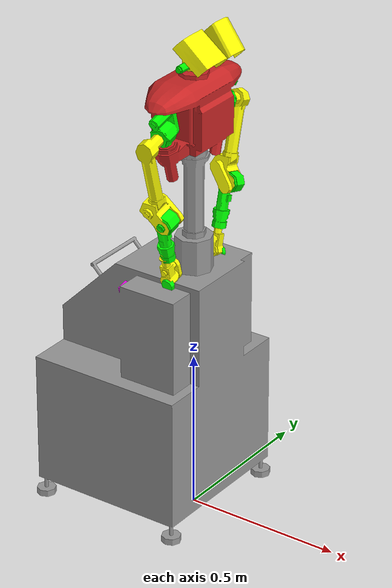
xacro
<?xml version="1.0"?>
<robot xmlns:xacro="http://www.ros.org/wiki/xacro" name="hiro">
  <include filename="$(find hiro_common)/urdf/common.xacro" />
  <include filename="$(find hiro_common)/urdf/materials.urdf.xacro" />

  <include filename="$(find hiro_common)/urdf/hiro_arm.urdf.xacro" />
  <include filename="$(find hiro_common)/urdf/hiro_base.urdf.xacro" />
  <include filename="$(find hiro_common)/urdf/hiro_chest.urdf.xacro" />
  <include filename="$(find hiro_common)/urdf/hiro_head.urdf.xacro" />
  <include filename="$(find hiro_common)/urdf/hiro_hand.urdf.xacro" />

	<xacro:base />
	<xacro:chest />
	<xacro:head />

  <xacro:arm side="r" reflect="1" reflect2="0" />
  <xacro:hand side="r" reflect="1" reflect2="0" />

  <xacro:arm side="l" reflect="-1" reflect2="1" />
  <xacro:hand side="l" reflect="-1" reflect2="1" />
</robot>

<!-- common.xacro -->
<robot>
  <property name="M_PI" value="3.1415926535897931" />

  <property name="pi" value="3.1415926535897931" />
  <property name="rad_per_deg" value="0.0174532925" />
</robot>

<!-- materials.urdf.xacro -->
<robot>

  <material name="Blue">
    <color rgba="0.0 0.0 0.8 1.0"/>
  </material>

  <material name="Green">
    <color rgba="0.0 0.8 0.0 1.0"/>
  </material>

  <material name="Grey">
    <color rgba="0.7 0.7 0.7 1.0"/>
  </material>

  <material name="Grey2">
    <color rgba="0.9 0.9 0.9 1.0"/>
  </material>

  <material name="Red">
    <color rgba="0.8 0.0 0.0 1.0"/>
  </material>

  <material name="White">
    <color rgba="1.0 1.0 1.0 1.0"/>
  </material>

  <material name="Black">
    <color rgba="0.1 0.1 0.1 1.0"/>
  </material>

  <material name="LightGrey">
    <color rgba="0.6 0.6 0.6 1.0"/>
  </material>

  <material name="white">
	  <color rgba="1 1 1 1"/>
	</material>
	<material name="yellow">
  	<color rgba="1 1 0 1"/>
  </material>
  <material name="magenta">
	  <color rgba="1 0 1 1"/>
  </material>
  <material name="red">
  	<color rgba="1 0 0 1"/>
  </material>
 	<material name="cyan">
	  <color rgba="0 1 1 1"/>
	</material>
	<material name="green">
	  <color rgba="0 1 0 1"/>
	</material>
	<material name="blue">
	  <color rgba="0 0 1 1"/>
	</material>
	<material name="black">
	  <color rgba="0 0 0 1"/>
	</material>
	<material name="violet">
	  <color rgba="0.6 0 1 1"/>
	</material>
	<material name="orange">
	  <color rgba="1 0.6 0 1"/>
	</material>
	<material name="grey">
	  <color rgba="0.6 0.6 0.6 1"/>
	</material>
	<material name="spring_green">
    <color rgba="0 1 0.498 1"/>
  </material>
  <material name="chartreuse">
    <color rgba="0.498 1 0 1"/>
  </material>
  <material name="olive_drab">
    <color rgba="0.753 1 0.243 1"/>
  </material>

  <material name="chest_red">
    <texture filename="package://hiro_common/materials/textures/chest_texture.png" />
  </material>

  <material name="chest_red_2">
    <texture filename="package://hiro_common/materials/textures/chest_texture_2.png" />
  </material>

  <material name="chest_red_3">
    <texture filename="package://hiro_common/materials/textures/chest_texture_4.jpg" />
  </material>
</robot>

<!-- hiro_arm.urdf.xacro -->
<robot xmlns:xacro="http://www.ros.org/wiki/xacro" name="hiro_arm">
  <!-- TODO Find out the exact value for below-->
  <xacro:property name="dist_to_wrist_pitch_mesh_boundary" value="-0.025" />

  <xacro:macro name="arm" params="side reflect reflect2">
  	<joint name="joint_${side}shoulder_yaw" type="revolute">
      <parent link="link_chest_yaw"/>
      <child link="link_${side}shoulder_yaw"/>
      <origin xyz="0.000 ${-0.145*reflect} 0.380" rpy="${0.261799*reflect} 0 0"/> <!-- rotation   1 0 0  0.261799 -->
      <axis xyz="0 0 1"/>
      <limit lower="${-90*rad_per_deg}" upper="${90*rad_per_deg}" effort="1000.0" velocity="0.5"/>
      <!--safety_controller  soft_lower_limit="${-85*rad_per_deg}" soft_upper_limit="${85*rad_per_deg}" k_position="0" k_velocity="0" /-->
      <!-- rotorInertia	1.12e-01 -->
      <dynamics damping="0.0" friction="0.0"/>
    </joint>

    <link name="link_${side}shoulder_yaw">
    <inertial>
      <origin xyz="-0.00226388 ${0.00521383*reflect} 0.01560807"/>
      <mass value="1.32626000" />
      <!-- momentsOfInertia [0.00207537 -0.00011276 0.00008927; -0.00011276 0.00240295 0.00004570; 0.00008927 0.00004570 0.00141912] -->
      <inertia  ixx="0.00207537" ixy="${-0.00011276*reflect}"  ixz="0.00008927"  iyy="0.00240295"  iyz="${0.00004570*reflect}"  izz="0.00141912" />
    </inertial>
      <visual>
        <geometry>
          <mesh filename="package://hiro_common/meshes/${side}sy.stl"/>
        </geometry>
        <origin xyz="0 0 0" rpy="0 0 0"/>
        <material name="green"/>
      </visual>
      <collision>
        <geometry>
          <mesh filename="package://hiro_common/meshes/${side}sy.stl"/>
        </geometry>
        <origin xyz="0 0 0" rpy="0 0 0"/>
      </collision>
    </link>
    <gazebo reference="link_${side}shoulder_yaw">
      <material>Gazebo/Red</material>
      <turnGravityOff>true</turnGravityOff>
    </gazebo>

   	<joint name="joint_${side}shoulder_pitch" type="revolute">
      <parent link="link_${side}shoulder_yaw"/>
      <child link="link_${side}shoulder_pitch"/>
      <origin xyz="0 0 0" rpy="0 0 0"/>
      <axis xyz="0 1 0"/>
      <limit lower="${-180*rad_per_deg}" upper="${120*rad_per_deg}" effort="1000.0" velocity="0.5"/>
      <!--safety_controller  soft_lower_limit="${-175*rad_per_deg}" soft_upper_limit="${115*rad_per_deg}" k_position="0" k_velocity="0" /-->
      <!-- rotorInertia	1.68e-01 -->
      <dynamics damping="0.0" friction="0.0"/>
    </joint>

   	<link name="link_${side}shoulder_pitch">
    <inertial>
      <origin xyz="-0.00005236 ${-0.05831338*reflect} -0.10706059"/>
      <mass value="1.14898000" />
      <!-- momentsOfInertia [0.01541678 -0.00000097 0.00000352; -0.00000098 0.01471175 -0.00213705; 0.00000351 -0.00213704 0.00126575] -->
      <inertia  ixx="0.01541678" ixy="${-0.00000097*reflect}"  ixz="0.00000352"  iyy="0.01471175"  iyz="${-0.00213705*reflect}"  izz="0.00126575" />
    </inertial>
      <visual>
        <geometry>
          <mesh filename="package://hiro_common/meshes/${side}sp.stl"/>
        </geometry>
        <origin xyz="0 0 0" rpy="0 0 0"/>
        <material name="yellow"/>
      </visual>
      <collision>
        <geometry>
          <mesh filename="package://hiro_common/meshes/${side}sp.stl"/>
        </geometry>
        <origin xyz="0 0 0" rpy="0 0 0"/>
      </collision>
    </link>
    <gazebo reference="link_${side}shoulder_pitch">
      <material>Gazebo/Yellow</material>
      <turnGravityOff>true</turnGravityOff>
    </gazebo>

    <joint name="joint_${side}elbow_pitch" type="revolute">
      <parent link="link_${side}shoulder_pitch"/>
      <child link="link_${side}elbow_pitch"/>
      <origin xyz="0.020 ${-0.085*reflect} -0.250" rpy="0 0 0"/>
      <axis xyz="0 1 0"/>
      <limit lower="${-160*rad_per_deg}" upper="${10*rad_per_deg}" effort="1000.0" velocity="0.5"/>
      <!--safety_controller  soft_lower_limit="${-155*rad_per_deg}" soft_upper_limit="${0*rad_per_deg}" k_position="0" k_velocity="0" /-->
      <!-- rotorInertia	6.00e-02 -->
      <dynamics damping="0.0" friction="0.0"/>
    </joint>

   	<link name="link_${side}elbow_pitch">
      <inertial>
        <origin xyz="-0.00002254 ${-0.00167107*reflect} -0.07151163"/>
        <mass value="0.57751838" />
        <!-- momentsOfInertia [0.00143966 0.00000030 0.00000120; 0.00000030 0.00141763 0.00007596; 0.00000120 0.00007596 0.00019720] -->
        <inertia  ixx="0.00143966" ixy="${0.00000030*reflect}"  ixz="0.00000120"  iyy="0.00141763"  iyz="${0.00007596*reflect}"  izz="0.00019720" />
      </inertial>
      <visual>
        <geometry>
          <mesh filename="package://hiro_common/meshes/${side}ep.stl"/>
        </geometry>
        <origin xyz="0 0 0" rpy="0 0 0"/>
        <material name="green"/>
      </visual>
      <collision>
        <geometry>
          <mesh filename="package://hiro_common/meshes/${side}ep.stl"/>
          <turnGravityOff>true</turnGravityOff>
        </geometry>
        <origin xyz="0 0 0" rpy="0 0 0"/>
      </collision>
    </link>
    <gazebo reference="link_${side}elbow_pitch">
      <material>Gazebo/Yellow</material>
    </gazebo>

    <joint name="joint_${side}wrist_yaw" type="revolute">
      <parent link="link_${side}elbow_pitch"/>
      <child link="link_${side}wrist_yaw"/>
      <origin xyz="-0.02 0.0 -0.22" rpy="0 0 0"/>
      <axis xyz="0 0 1"/>
      <limit lower="${(-195+reflect2*60)*rad_per_deg}" upper="${(135+reflect2*60)*rad_per_deg}" effort="1000.0" velocity="0.5"/>
      <!--safety_controller  soft_lower_limit="${-190*rad_per_deg}" soft_upper_limit="${130*rad_per_deg}" k_position="0" k_velocity="0" /-->
      <!-- rotorInertia	3.74e-03 -->
      <dynamics damping="0.0" friction="0.0"/>
    </joint>

   	<link name="link_${side}wrist_yaw">
      <inertial>
        <origin xyz="-0.00001788 ${0.00395812*reflect} -0.20273050"/>
        <mass value="0.45741788" />
        <!-- momentsOfInertia [0.00069205 -0.00000003 0.00000052; -0.00000003 0.00068903 0.00001915; 0.00000052 0.00001915 0.00013509] -->
        <inertia  ixx="0.00069205" ixy="${-0.00000003*reflect}"  ixz="0.00000052"  iyy="0.00068903"  iyz="${0.00001915*reflect}"  izz="0.00013509" />
      </inertial>
      <visual>
        <geometry>
          <mesh filename="package://hiro_common/meshes/${side}wy.stl"/>
        </geometry>
        <origin xyz="0 0 0" rpy="0 0 0"/>
        <material name="yellow"/>
      </visual>
      <collision>
        <geometry>
          <mesh filename="package://hiro_common/meshes/${side}wy.stl"/>
        </geometry>
        <origin xyz="0 0 0" rpy="0 0 0"/>
      </collision>
    </link>
    <gazebo reference="link_${side}wrist_yaw">
      <material>Gazebo/Yellow</material>
      <turnGravityOff>false</turnGravityOff>
    </gazebo>

    <joint name="joint_${side}wrist_pitch" type="revolute">
      <parent link="link_${side}wrist_yaw"/>
      <child link="link_${side}wrist_pitch"/>
      <origin xyz="0 0 0" rpy="0 0 0"/>
      <axis xyz="0 1 0"/>
      <limit lower="${-100*rad_per_deg}" upper="${100*rad_per_deg}" effort="1000.0" velocity="0.5"/>
      <!--safety_controller  soft_lower_limit="${-95*rad_per_deg}" soft_upper_limit="${95*rad_per_deg}" k_position="0" k_velocity="0" /-->
      <!-- rotorInertia	1.50e-02 -->
      <dynamics damping="0.0" friction="0.0"/>
    </joint>

    <link name="link_${side}wrist_pitch">
      <inertial>
        <origin xyz="0.00243131 ${-0.00379733*reflect} -0.05770359"/>
        <mass value="0.41843443" />
        <!-- momentsOfInertia [0.00052016 -0.00000169 0.00000790; -0.00000169 0.00050569 0.00005377; 0.00000790 0.00005377 0.00014004] -->
        <inertia  ixx="0.00052016" ixy="${-0.00000169*reflect}"  ixz="0.00000790"  iyy="0.00050569"  iyz="${0.00005377*reflect}"  izz="0.00014004" />
      </inertial>
      <visual>
        <geometry>
          <mesh filename="package://hiro_common/meshes/${side}wp.stl"/>
        </geometry>
        <origin xyz="0 0 0" rpy="0 0 0"/>
        <material name="green"/>
      </visual>
      <collision>
        <geometry>
          <mesh filename="package://hiro_common/meshes/${side}wp.stl"/>
        </geometry>
        <origin xyz="0 0 0" rpy="0 0 0"/>
      </collision>
    </link>
    <gazebo reference="link_${side}wrist_pitch">
      <material>Gazebo/Yellow</material>
      <turnGravityOff>true</turnGravityOff>
    </gazebo>

    <joint name="joint_${side}wrist_roll" type="revolute">
      <parent link="link_${side}wrist_pitch"/>
      <child link="link_${side}wrist_roll"/>
      <!--origin xyz="0.0  0.0 -0.090" rpy="0 0 0"/-->
      <origin xyz="${dist_to_wrist_pitch_mesh_boundary}  0.0 -0.090" rpy="0 0 0"/>
      <axis xyz="1 0 0"/>
      <limit lower="${-130*rad_per_deg}" upper="${130*rad_per_deg}" effort="1000.0" velocity="0.5"/>
      <!--safety_controller  soft_lower_limit="${-125*rad_per_deg}" soft_upper_limit="${125*rad_per_deg}" k_position="0" k_velocity="0" /-->
      <!-- rotorInertia	7.56e-03 -->
      <dynamics damping="0.0" friction="0.0"/>
    </joint>

    <link name="link_${side}wrist_roll">
      <inertial>
        <origin xyz="-0.04847597 ${0.00000320*reflect} -0.03889875"/>
        <mass value="1.05156000" />
        <!-- momentsOfInertia [0.00194072 -0.00000011 -0.00042482; -0.00000011 0.00209392 -0.00000012; -0.00042482 -0.00000012 0.00035788] -->
        <inertia  ixx="0.00194072" ixy="${-0.00000011*reflect}"  ixz="-0.00042482"  iyy="0.00209392"  iyz="${-0.00000012*reflect}"  izz="0.00035788" />
      </inertial>
      <visual>
        <geometry>
          <!--mesh filename="package://hiro_common/meshes/wr.stl"/-->
          <box size="0.010 0.055 0.070"/>
        </geometry>
        <origin xyz="0 0 0" rpy="0 0 0"/>
        <material name="yellow"/>
      </visual>
      <collision>
        <geometry>
          <!--mesh filename="package://hiro_common/meshes/wr.stl"/-->
          <box size="0.010 0.055 0.070"/>
        </geometry>
        <origin xyz="0 0 0" rpy="0 0 0"/>
      </collision>
    </link>
    <gazebo reference="link_${side}wrist_roll">
      <material>Gazebo/Yellow</material>
      <turnGravityOff>false</turnGravityOff>
    </gazebo>
  </xacro:macro>
</robot>

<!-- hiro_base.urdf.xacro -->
<robot xmlns:xacro="http://www.ros.org/wiki/xacro" name="hiro_base">
  <xacro:property name="base_height" value="0.900" />
  <xacro:property name="torso_height" value="0.300" />

  <xacro:macro name="base">
    <link name="link_base">
      <inertial>
        <origin xyz="-0.00038809 0.00000166 ${base_height+0.16466017}"/>
        <mass value="93.11081000" />
<!--        momentsOfInertia [0.03473180 0.00000578 -0.00003341; 0.00000578 0.03474816 0.00000063; -0.00003343 0.00000062 0.00438238] -->
        <inertia  ixx="0.03473180" ixy="0.00000578"  ixz="-0.00003341"  iyy="0.03474816"  iyz="0.00000063"  izz="0.00438238" />
      </inertial>
      <visual>
        <geometry>
          <mesh filename="package://hiro_common/meshes/base.stl"/>
          <!--cylinder length="${base_height+torso_height}" radius="0.030"/-->
        </geometry>
        <origin xyz="0 0 ${base_height}" rpy="0 ${-0.5*pi} ${-0.5*pi}"/>
        <!--origin xyz="0 0 ${(base_height+torso_height)/2}" rpy="0 0 0"/-->
        <material name="grey"/>
      </visual>
      <collision>
        <geometry>
          <!--mesh filename="package://hiro_common/meshes/base.stl"/-->
          <!--cylinder length="${base_height+torso_height}" radius="0.030"/-->
          <cylinder length="${torso_height}" radius="0.030"/>
        </geometry>
        <!--origin xyz="0 0 ${base_height}" rpy="0 ${-0.5*pi} ${-0.5*pi}"/-->
        <!--origin xyz="0 0 ${(base_height+torso_height)/2}" rpy="0 0 0"/-->
        <origin xyz="0 0 ${base_height+(torso_height/2)}" rpy="0 0 0"/> <!--This is safer because this collision model is above the table (not in collision)-->
      </collision>
    </link>
    <gazebo reference="link_base">
      <material>Gazebo/Red</material>
      <mu1 value="100.0" />
      <mu2 value="100.0" />
      <kp  value="1000000.0" />
      <kd  value="1.0" />
      <turnGravityOff>true</turnGravityOff>
    </gazebo>
  </xacro:macro>
</robot>

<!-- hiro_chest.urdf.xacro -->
<robot xmlns:xacro="http://www.ros.org/wiki/xacro" name="hiro_chest">
  <xacro:macro name="chest">
    <joint name="joint_chest_yaw" type="revolute">
      <parent link="link_base"/>
      <child link="link_chest_yaw"/>
      <origin xyz="0 0 ${base_height}" rpy="0 0 0"/>
      <axis xyz="0 0 1"/>
      <limit lower="${-170*rad_per_deg}" upper="${170*rad_per_deg}" effort="1000.0" velocity="0.5"/>
      <!--safety_controller  soft_lower_limit="${-170*rad_per_deg}" soft_upper_limit="${170*rad_per_deg}" k_position="0" k_velocity="0" /-->
      <!-- rotorInertia	1.12e-01 -->
      <dynamics damping="0.0" friction="0.0"/>
    </joint>

    <link name="link_chest_yaw">
      <inertial>
        <origin xyz="-0.00493378 -0.00097682 0.34405202"/>
        <mass value="6.20761000" />
        <!-- momentsOfInertia [0.06395752 -0.00022833 0.00011172; -0.00022833 0.03108451 0.00006480; 0.00011172 0.00006480 0.05011067] -->
        <inertia  ixx="0.06395752" ixy="-0.00022833"  ixz="0.00011172"  iyy="0.03108451"  iyz="0.00006480"  izz="0.05011067" />
      </inertial>
      <visual>
        <geometry>
          <mesh filename="package://hiro_common/meshes/cy.stl"/>
        </geometry>
        <origin xyz="0 0 0"/>
        <!--material name="magenta"/-->
        <material name="chest_red_3"/>
      </visual>
      <collision>
        <geometry>
          <mesh filename="package://hiro_common/meshes/cy.stl"/>
        </geometry>
        <origin xyz="0 0 0"/>
      </collision>
    </link>
    <gazebo reference="link_chest_yaw">
      <material>Gazebo/Red</material>
      <turnGravityOff>true</turnGravityOff>
    </gazebo>
  </xacro:macro>
</robot>

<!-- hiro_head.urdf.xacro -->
<robot xmlns:xacro="http://www.ros.org/wiki/xacro" name="hiro_head">
  <xacro:macro name="head">
    <joint name="joint_head_yaw" type="revolute">
      <parent link="link_chest_yaw"/>
      <child link="link_neck_yaw"/>
      <origin xyz="0.0 0 0.5495" rpy="0 0 0"/> <!-- rotation 0 0 1 0 -->
      <axis xyz="0 0 1"/>
      <limit lower="${-165*rad_per_deg}" upper="${165*rad_per_deg}" effort="1000.0" velocity="0.5"/>
      <safety_controller  soft_lower_limit="${-160*rad_per_deg}" soft_upper_limit="${160*rad_per_deg}" k_position="0" k_velocity="0" />
      <dynamics damping="0.0" friction="0.0"/>
    </joint>

    <link name="link_neck_yaw">
      <inertial>
        <origin xyz="-0.00002292 0.00547848 -0.00784016"/>
        <mass value="0.31792900" />
        <!-- momentsOfInertia [0.00027682 0.00000003 -0.00000033; 0.00000003 0.00013009 -0.00001092; -0.00000033 -0.00001092 0.00020954] -->
        <inertia  ixx="0.00027682" ixy="0.00000003"  ixz="-0.00000033"  iyy="0.00013009"  iyz="-0.00001092"  izz="0.00020954" />
      </inertial>
      <visual>
        <geometry>
          <mesh filename="package://hiro_common/meshes/ny.stl"/>
        </geometry>
        <origin xyz="0 0 0" rpy="0 0 0"/>
        <material name="green"/>
      </visual>
      <collision>
        <geometry>
          <mesh filename="package://hiro_common/meshes/ny.stl"/>
        </geometry>
        <origin xyz="0 0 0" rpy="0 0 0"/>
      </collision>
    </link>
    <gazebo reference="link_neck_yaw">
      <material>Gazebo/Red</material>
      <turnGravityOff>true</turnGravityOff>
    </gazebo>

    <joint name="joint_head_pitch" type="revolute">
      <parent link="link_neck_yaw"/>
      <child link="link_neck_pitch"/>
      <origin xyz="0 0 0" rpy="0 0 0"/> <!-- rotation 0 1 0 0 -->
      <axis xyz="0 1 0"/>
      <limit lower="${-50*rad_per_deg}" upper="${50*rad_per_deg}" effort="1000.0" velocity="0.5"/>
      <safety_controller  soft_lower_limit="${-45*rad_per_deg}" soft_upper_limit="${45*rad_per_deg}" k_position="0" k_velocity="0" />
      <dynamics damping="0.0" friction="0.0"/>
    </joint>

    <link name="link_neck_pitch">
      <inertial>
        <origin xyz="0.00000502 -0.01667768 0.01631533"/>
        <mass value="0.08085931" />
        <!-- momentsOfInertia [0.00008070 -0.00000003 -0.00000000; -0.00000003 0.00003025 -0.00001277; -0.00000000 -0.00001277 0.00006637] -->
        <inertia  ixx="0.00008070" ixy="-0.00000003"  ixz="-0.00000000"  iyy="0.00003025"  iyz="-0.00001277"  izz="0.00006637" />
      </inertial>
      <visual>
        <geometry>
          <mesh filename="package://hiro_common/meshes/np.stl"/>
        </geometry>
        <origin xyz="0 0 0" rpy="0 0 0"/>
        <material name="yellow"/>
      </visual>
      <collision>
        <geometry>
          <mesh filename="package://hiro_common/meshes/np.stl"/>
        </geometry>
        <origin xyz="0 0 0" rpy="0 0 0"/>
      </collision>
    </link>
    <gazebo reference="link_neck_pitch">
      <material>Gazebo/Red</material>
      <turnGravityOff>true</turnGravityOff>
    </gazebo>
  </xacro:macro>
</robot>

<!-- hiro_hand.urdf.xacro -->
<robot xmlns:xacro="http://www.ros.org/wiki/xacro" name="hiro_hand">
  <xacro:macro name="hand" params="side reflect reflect2">
	  <joint name="joint_${side}hand_palm" type="fixed">
		  <parent link="link_${side}wrist_roll"/>
		  <child link="link_${side}hand_palm"/>
		  <!--origin xyz="${(-1*(0.130/2))+(-1*(0.010/2))} ${(-1*(0.055/2))+(-1*(0.035/2))} 0" rpy="0 0 0"/-->
		  <origin xyz="${-1*((0.130/2)+(0.010/2))} ${reflect*-1*((0.055/2)+(0.035/2))} 0" rpy="0 0 ${reflect2*M_PI}"/>
	  </joint>

	  <link name="link_${side}hand_palm">
		  <visual>
			  <geometry>
				  <box size="0.130 0.035 0.100"/>
			  </geometry>
			  <origin xyz="0 0 0"/>
			  <material name="magenta"/>
		  </visual>
		  <collision>
			  <geometry>
				  <box size="0.130 0.035 0.100"/>
			  </geometry>
			  <origin xyz="0 0 0"/>
		  </collision>
	  </link>

  </xacro:macro>
</robot>
